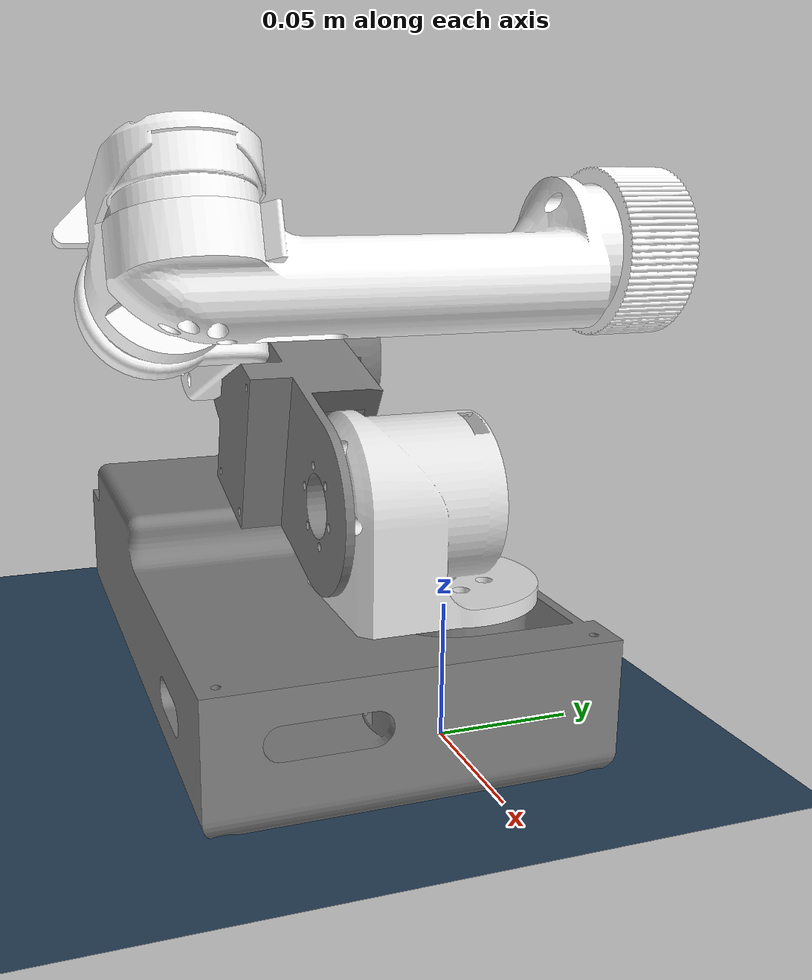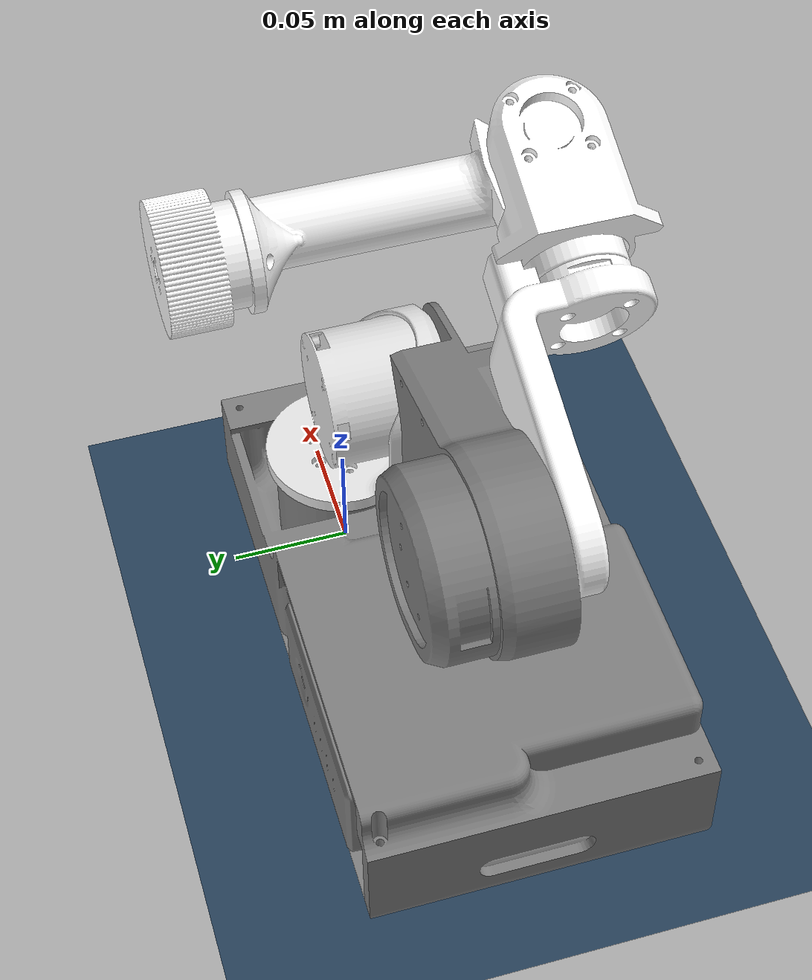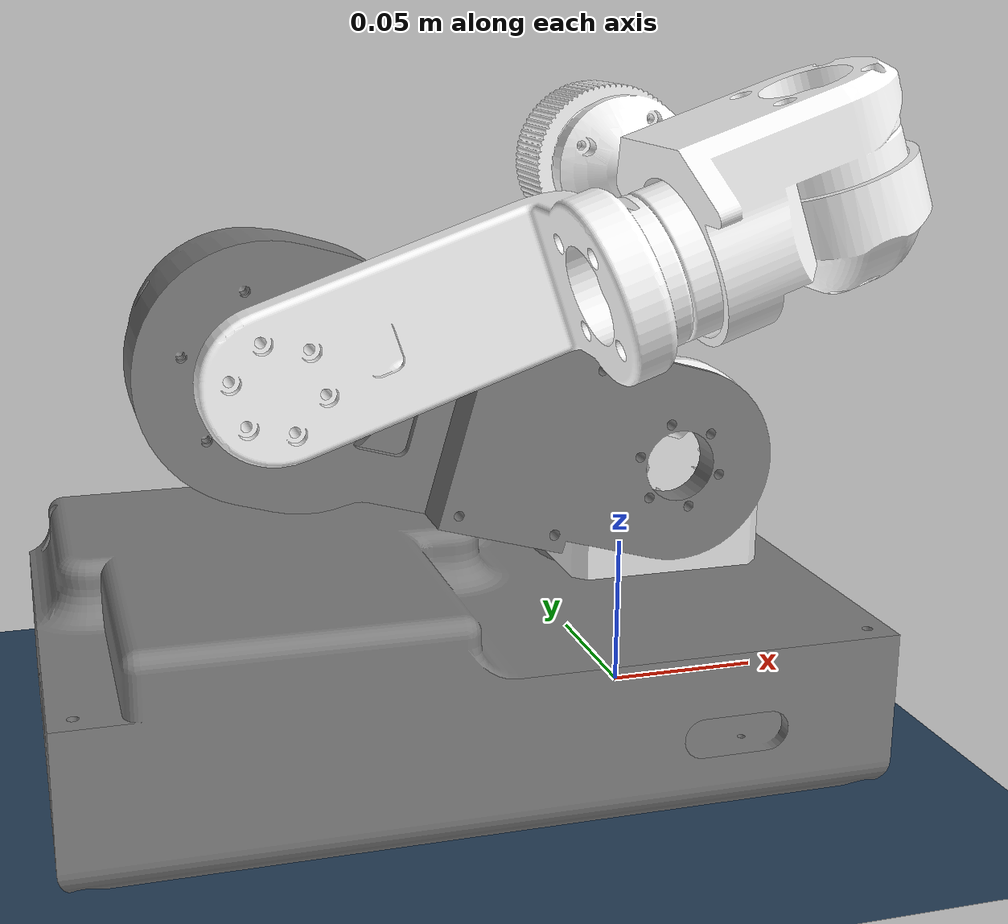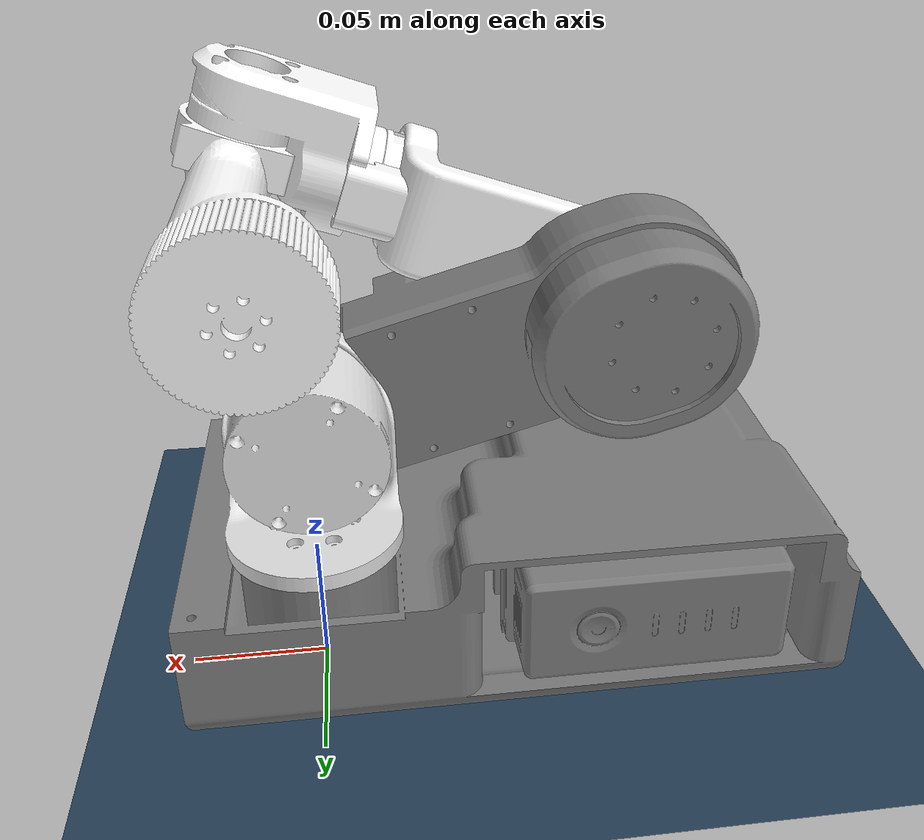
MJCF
<mujoco model="robot">
  <default>
    <default class="robot">
      <default class="visual">
        <geom contype="0" conaffinity="0" group="2" />
      </default>
      <default class="collision">
        <geom contype="0" conaffinity="1" group="3" />
      </default>
    </default>
    <default class="floor">
      <geom type="plane" size="0 0 0.05" material="groundplane" />
    </default>
  </default>

  <compiler angle="radian" meshdir="." balanceinertia="true" />

  <visual>
    <global offwidth="3840" offheight="2160" />
  </visual>

  <worldbody>
    <body name="base" childclass="robot" pos="0 0 0.008">
      <geom name="base_collision" type="mesh" mesh="base_collision_base_visual" class="collision" />
      <geom name="base_visual" type="mesh" mesh="base_base_visual" material="base_color" class="visual" />
      <body name="link1" pos="0 0 0.046">
        <inertial pos="0.00008222 -0.0160238 0.03294265" mass="0.34482974" diaginertia="8.911e-05 9.56e-05 7.549e-05" />
        <joint name="joint1" type="hinge" range="-3 3" damping="0.15" axis="0 0 1" />
        <geom name="link1_collision" type="mesh" mesh="link1_collision_link1_visual" class="collision" />
        <geom name="link1_visual" type="mesh" mesh="link1_link1_visual" material="link1_color" class="visual" />
        <body name="link2" pos="0 -0.041 0.036">
          <inertial pos="-0.10586847 0.01468354 0.03029488" mass="0.48971002" diaginertia="0.0002561 0.00085281 0.00079733" />
          <joint name="joint2" type="hinge" range="-2.5 0" damping="0.15" axis="0 -1 0" />
          <geom name="link2_collision" type="mesh" mesh="link2_collision_link2_visual" class="collision" />
          <geom name="link2_visual" type="mesh" mesh="link2_link2_visual" material="base_color" class="visual" />
          <body name="link3" pos="-0.12496402 -0.004 0.03583286">
            <inertial pos="0.07863743 -0.03662376 0.02698167" mass="0.18094807" diaginertia="0.00010718 0.00027689 0.00028641" />
            <joint name="joint3" type="hinge" range="0 3.14" damping="0.15" axis="0 -1 0" />
            <geom name="link3_collision" type="mesh" mesh="link3_collision_link3_visual" class="collision" />
            <geom name="link3_visual" type="mesh" mesh="link3_link3_visual" material="link3_color" class="visual" />
            <body name="link4" pos="0.11251671 -0.046 0.03874261">
              <inertial pos="0.02302413 -0.00009557 0.02115237" mass="0.1588118" diaginertia="4.492e-05 6.325e-05 6.419e-05" />
              <joint name="joint4" type="hinge" range="0 3.14" damping="0.05" axis="0.94551858 0 0.32556815" />
              <geom name="link4_collision" type="mesh" mesh="link4_collision_link4_visual" class="collision" />
              <geom name="link4_visual" type="mesh" mesh="link4_link4_visual" material="link3_color" class="visual" />
              <body name="link5" pos="0.03501537 0 0.0088839">
                <inertial pos="-0.00734914 0.10852801 -0.00383624" mass="0.22771059" diaginertia="0.000609 6.628e-05 0.00062006" />
                <joint name="joint5" type="hinge" range="0 3.14" damping="0.05" axis="0.32556815 0 -0.94551858" />
                <geom name="link5_collision" type="mesh" mesh="link5_collision_link5_visual" class="collision" />
                <geom name="link5_visual" type="mesh" mesh="link5_link5_visual" material="link3_color" class="visual" />
              </body>
            </body>
          </body>
        </body>
      </body>
    </body>
    <light pos="0 0 2." dir="0 0 -1" directional="true" />
    <geom name="floor" class="floor" size="0 0 0.05" />
  </worldbody>

  <asset>
    <material name="base_color" rgba="0.49803922 0.49803922 0.49803922 1" />
    <material name="link1_color" rgba="0.89411765 0.89411765 0.89411765 1" />
    <material name="link3_color" rgba="1 1 1 1" />
    <mesh name="base_collision_base_visual" file="meshes/meshes\base_visual.stl" />
    <mesh name="base_base_visual" file="meshes/meshes\base_visual.stl" />
    <mesh name="link1_collision_link1_visual" file="meshes/meshes\link1_visual.stl" />
    <mesh name="link1_link1_visual" file="meshes/meshes\link1_visual.stl" />
    <mesh name="link2_collision_link2_visual" file="meshes/meshes\link2_visual.stl" />
    <mesh name="link2_link2_visual" file="meshes/meshes\link2_visual.stl" />
    <mesh name="link3_collision_link3_visual" file="meshes/meshes\link3_visual.stl" />
    <mesh name="link3_link3_visual" file="meshes/meshes\link3_visual.stl" />
    <mesh name="link4_collision_link4_visual" file="meshes/meshes\link4_visual.stl" />
    <mesh name="link4_link4_visual" file="meshes/meshes\link4_visual.stl" />
    <mesh name="link5_collision_link5_visual" file="meshes/meshes\link5_visual.stl" />
    <mesh name="link5_link5_visual" file="meshes/meshes\link5_visual.stl" />
    <texture type="2d" name="groundplane" builtin="checker" mark="edge" rgb1="0.2 0.3 0.4" rgb2="0.1 0.2 0.3" markrgb="0.8 0.8 0.8" width="300" height="300" />
    <material name="groundplane" texture="groundplane" texuniform="true" texrepeat="5 5" reflectance="0.2" />
    <texture type="skybox" builtin="gradient" rgb1="0.3 0.5 0.7" rgb2="0 0 0" width="512" height="3072" />
  </asset>

  <actuator>
    <motor name="motor1" joint="joint1" gear="1" forcelimited="true" forcerange="-3 3"/>
    <motor name="motor2" joint="joint2" gear="1" forcelimited="true" forcerange="-3 3"/>
    <motor name="motor3" joint="joint3" gear="1" forcelimited="true" forcerange="-3 3"/>
    <motor name="motor4" joint="joint4" gear="1" forcelimited="true" forcerange="-1 1"/>
    <motor name="motor5" joint="joint5" gear="1" forcelimited="true" forcerange="-1 1"/>
  </actuator>

  <visual>
    <rgba haze="0.15 0.25 0.35 1" />
  </visual>
</mujoco>
